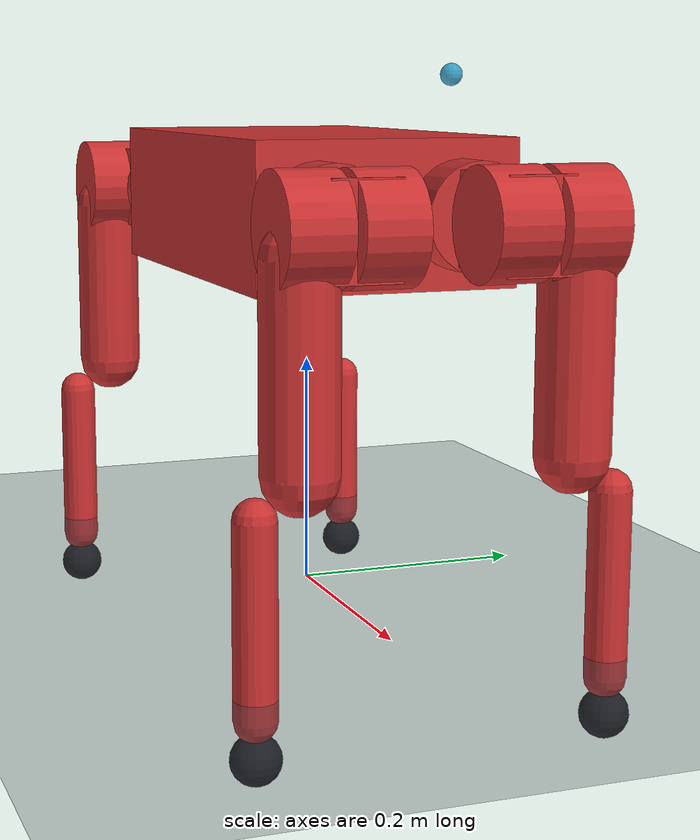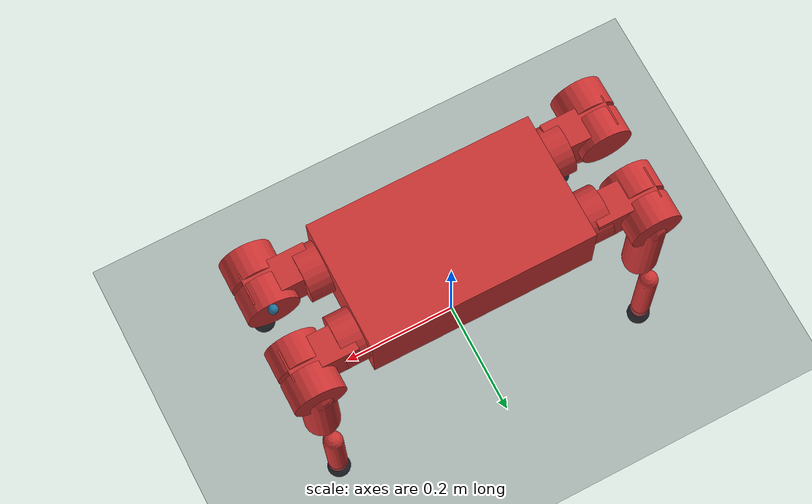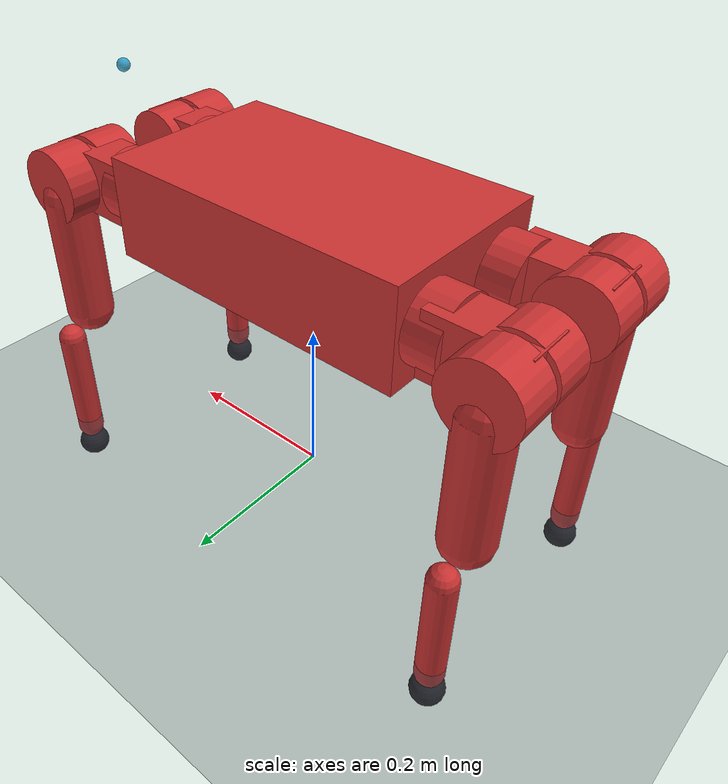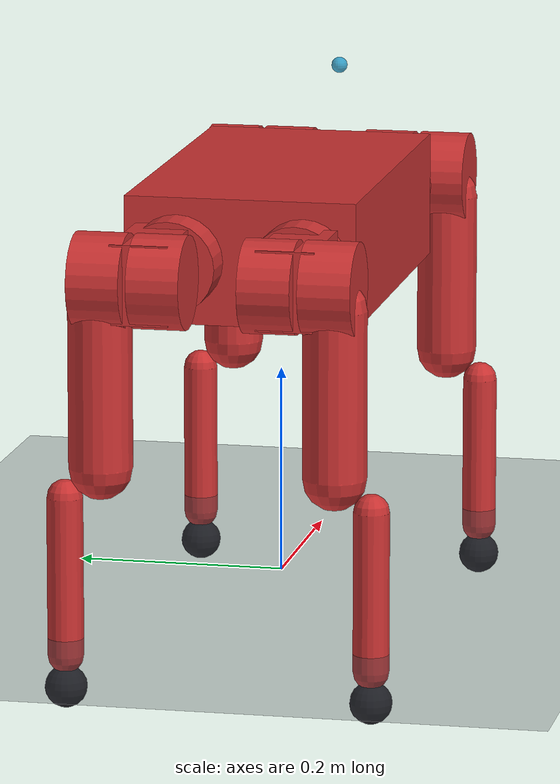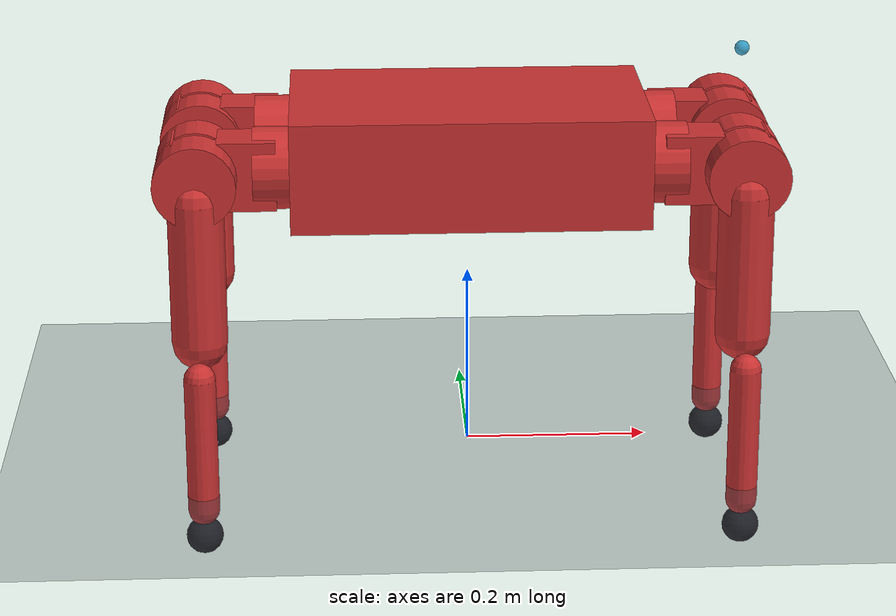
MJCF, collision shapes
<?xml version="1.0" ?>
<mujoco model="robodog_sizing">
  <compiler angle="radian" meshdir="/home/farouk/code/robodog/ros2_ws/install/robodog_description/share/robodog_description/meshes" autolimits="true" balanceinertia="true" discardvisual="false"/>
  <option timestep="0.0005" integrator="implicitfast" cone="elliptic" impratio="10" gravity="0 0 -9.81"/>
  <size njmax="2000" nconmax="500"/>
  <statistic extent="30.0"/>
  <visual>
    <global offwidth="1920" offheight="1200" azimuth="140" elevation="-20"/>
    <map znear="0.0016666666666666668" zfar="2.0"/>
    <quality shadowsize="2048" offsamples="4"/>
  </visual>
  <default>
    <default class="robot">
      <joint damping="0.05" frictionloss="0.12" armature="0.012"/>
      <motor ctrllimited="true" ctrlrange="-36 36"/>
      <default class="visual">
        <geom contype="0" conaffinity="0" group="2" density="0"/>
      </default>
      <default class="collision">
        <geom group="3" condim="4" friction="0.9 0.02 0.001" solref="0.004 1" solimp="0.95 0.99 0.001" density="0" rgba="0.8 0.2 0.2 0.35"/>
      </default>
      <default class="foot">
        <geom group="3" condim="6" friction="1.0 0.05 0.002" solref="0.006 1" solimp="0.95 0.99 0.001" density="0" priority="2" rgba="0.1 0.1 0.12 1"/>
      </default>
    </default>
  </default>
  <asset>
    <mesh name="4x9x4_bearing" file="4x9x4_bearing.stl"/>
    <mesh name="61804_2rs" file="61804_2rs.stl"/>
    <mesh name="acs758_200a_sensor" file="acs758_200a_sensor.stl"/>
    <mesh name="albright_sw80_48v" file="albright_sw80_48v.stl"/>
    <mesh name="angle_motor_connect" file="angle_motor_connect.stl"/>
    <mesh name="as150u_socket" file="as150u_socket.stl"/>
    <mesh name="battery_6s_10000mah_1" file="battery_6s_10000mah_1.stl"/>
    <mesh name="battery_6s_10000mah_2" file="battery_6s_10000mah_2.stl"/>
    <mesh name="belt" file="belt.stl"/>
    <mesh name="bmi088_imu" file="bmi088_imu.stl"/>
    <mesh name="body" file="body.stl"/>
    <mesh name="body_front" file="body_front.stl"/>
    <mesh name="body_panel" file="body_panel.stl"/>
    <mesh name="body_rear" file="body_rear.stl"/>
    <mesh name="e_stop_mushroom_nc" file="e_stop_mushroom_nc.stl"/>
    <mesh name="electronics_deck_front" file="electronics_deck_front.stl"/>
    <mesh name="electronics_deck_rear" file="electronics_deck_rear.stl"/>
    <mesh name="foot_ball" file="foot_ball.stl"/>
    <mesh name="handle" file="handle.stl"/>
    <mesh name="head" file="head.stl"/>
    <mesh name="head_cover" file="head_cover.stl"/>
    <mesh name="idler_bolt_m4x30" file="idler_bolt_m4x30.stl"/>
    <mesh name="idler_roller" file="idler_roller.stl"/>
    <mesh name="imu_sassa_support" file="imu_sassa_support.stl"/>
    <mesh name="inline_connect" file="inline_connect.stl"/>
    <mesh name="jetson_orin_nano_super_8gb" file="jetson_orin_nano_super_8gb.stl"/>
    <mesh name="knee_output_hub" file="knee_output_hub.stl"/>
    <mesh name="knee_rear_plate" file="knee_rear_plate.stl"/>
    <mesh name="littelfuse_mega_100a_holder" file="littelfuse_mega_100a_holder.stl"/>
    <mesh name="lower_leg" file="lower_leg.stl"/>
    <mesh name="lower_leg_cover" file="lower_leg_cover.stl"/>
    <mesh name="meanwell_rsd_60l_12" file="meanwell_rsd_60l_12.stl"/>
    <mesh name="motor_pulley" file="motor_pulley.stl"/>
    <mesh name="nuwa_hp60c" file="nuwa_hp60c.stl"/>
    <mesh name="robstride06" file="robstride06.stl"/>
    <mesh name="upperleg_cover" file="upperleg_cover.stl"/>
    <mesh name="upperleg_main" file="upperleg_main.stl"/>
    <texture name="sky" type="skybox" builtin="gradient" rgb1="0.35 0.45 0.60" rgb2="0.08 0.10 0.14" width="256" height="256"/>
    <texture name="grid" type="2d" builtin="checker" width="512" height="512" rgb1="0.28 0.30 0.33" rgb2="0.22 0.24 0.27"/>
    <material name="grid" texture="grid" texrepeat="12 12" texuniform="true" reflectance="0.05"/>
    <material name="shell" rgba="0.26 0.28 0.32 1"/>
    <material name="actuator" rgba="0.88 0.42 0.09 1"/>
    <material name="structure" rgba="0.72 0.74 0.78 1"/>
    <material name="foot" rgba="0.10 0.10 0.12 1"/>
    <material name="bearing" rgba="0.62 0.81 0.93 1"/>
    <material name="sensor" rgba="0.13 0.55 0.75 1"/>
  </asset>
  <worldbody>
    <body name="base_link" childclass="robot" pos="0 0 0.34" quat="1 0 0 0">
      <freejoint name="base_free"/>
      <inertial pos="-0.003046 0.000737 -0.002643" mass="18.236627" fullinertia="0.043565 0.17877 0.201722 0.000968 -0.000506 -0.000444"/>
      <geom type="mesh" mesh="acs758_200a_sensor" class="visual" pos="0 0 0" quat="0.707105 0 0 -0.707108" material="structure"/>
      <geom type="mesh" mesh="albright_sw80_48v" class="visual" pos="0 0 0" quat="0.707105 0 0 -0.707108" material="structure"/>
      <geom type="mesh" mesh="as150u_socket" class="visual" pos="0 0 0" quat="0.707105 0 0 -0.707108" material="structure"/>
      <geom type="mesh" mesh="battery_6s_10000mah_1" class="visual" pos="0 0 0" quat="0.707105 0 0 -0.707108" material="structure"/>
      <geom type="mesh" mesh="battery_6s_10000mah_2" class="visual" pos="0 0 0" quat="0.707105 0 0 -0.707108" material="structure"/>
      <geom type="mesh" mesh="bmi088_imu" class="visual" pos="0 0 0" quat="0.707105 0 0 -0.707108" material="structure"/>
      <geom type="mesh" mesh="body" class="visual" pos="0 0 0" quat="0.707105 0 0 -0.707108" material="shell"/>
      <geom type="mesh" mesh="body_front" class="visual" pos="0 0 0" quat="0.707105 0 0 -0.707108" material="structure"/>
      <geom type="mesh" mesh="body_panel" class="visual" pos="0.198 -1e-06 0" quat="0.499998 0.5 -0.500002 -0.5" material="shell"/>
      <geom type="mesh" mesh="body_panel" class="visual" pos="-0.198 1e-06 0" quat="0.499998 -0.5 0.500002 -0.5" material="shell"/>
      <geom type="mesh" mesh="body_rear" class="visual" pos="0 0 0" quat="0.707105 0 0 -0.707108" material="structure"/>
      <geom type="mesh" mesh="e_stop_mushroom_nc" class="visual" pos="0 0 0" quat="0.707105 0 0 -0.707108" material="structure"/>
      <geom type="mesh" mesh="electronics_deck_front" class="visual" pos="0 0 0" quat="0.707105 0 0 -0.707108" material="structure"/>
      <geom type="mesh" mesh="electronics_deck_rear" class="visual" pos="0 0 0" quat="0.707105 0 0 -0.707108" material="structure"/>
      <geom type="mesh" mesh="handle" class="visual" pos="-0 0 0" quat="0.707105 0 0 -0.707108" material="shell"/>
      <geom type="mesh" mesh="head" class="visual" pos="0 0 0" quat="0.707105 0 0 -0.707108" material="structure"/>
      <geom type="mesh" mesh="head_cover" class="visual" pos="0 0 0" quat="0.707105 0 0 -0.707108" material="structure"/>
      <geom type="mesh" mesh="imu_sassa_support" class="visual" pos="0 0 0" quat="0.707105 0 0 -0.707108" material="structure"/>
      <geom type="mesh" mesh="jetson_orin_nano_super_8gb" class="visual" pos="0 0 0" quat="0.707105 0 0 -0.707108" material="structure"/>
      <geom type="mesh" mesh="littelfuse_mega_100a_holder" class="visual" pos="0 0 0" quat="0.707105 0 0 -0.707108" material="structure"/>
      <geom type="mesh" mesh="meanwell_rsd_60l_12" class="visual" pos="0 0 0" quat="0.707105 0 0 -0.707108" material="structure"/>
      <geom type="mesh" mesh="nuwa_hp60c" class="visual" pos="0 0 0" quat="0.707105 0 0 -0.707108" material="structure"/>
      <geom type="mesh" mesh="robstride06" class="visual" pos="0.227 -0.060001 0" quat="2.70595e-06 -0.707105 0.707108 -2.70596e-06" material="structure"/>
      <geom type="mesh" mesh="robstride06" class="visual" pos="-0.227 -0.06 0" quat="0.707105 0 0 -0.707108" material="structure"/>
      <geom type="mesh" mesh="robstride06" class="visual" pos="-0.227 0.060001 0" quat="0.707105 0 0 -0.707108" material="structure"/>
      <geom type="mesh" mesh="robstride06" class="visual" pos="0.227 0.059999 0" quat="2.70595e-06 -0.707105 0.707108 -2.70596e-06" material="structure"/>
      <geom name="base_col0" type="box" class="collision" size="0.192 0.11 0.06" pos="0 0 0" quat="1 0 0 0"/>
      <geom name="base_col1" type="cylinder" class="collision" size="0.044 0.0245" pos="-0.2065 -0.06 0" quat="0.499999 0.499999 -0.500001 -0.500001"/>
      <geom name="base_col2" type="cylinder" class="collision" size="0.044 0.0245" pos="-0.2065 0.060001 0" quat="0.499999 0.499999 -0.500001 -0.500001"/>
      <geom name="base_col3" type="cylinder" class="collision" size="0.044 0.0245" pos="0.2065 0.059999 0" quat="0.500001 -0.499997 0.499999 -0.500003"/>
      <geom name="base_col4" type="cylinder" class="collision" size="0.044 0.0245" pos="0.2065 -0.060001 0" quat="0.500001 -0.499997 0.499999 -0.500003"/>
      <site name="imu_site" pos="0 0 0" size="0.01" rgba="0.1 0.6 0.8 0.6"/>
      <body name="camera_link" pos="0.297 0.002036 0.108013" quat="1 0 0 0">
        <inertial pos="-0.01528 0 0" mass="0.15" diaginertia="0.0001 2e-05 0.00011"/>
        <site name="camera_site" pos="0 0 0" size="0.008" rgba="0.1 0.6 0.8 0.8"/>
        <camera name="depth_camera" mode="fixed" pos="0 0 0" quat="0.5 0.5 -0.5 -0.5" fovy="49"/>
      </body>
      <body name="FL_hip" pos="0.231 0.06 0">
        <joint name="FL_haa_joint" type="hinge" axis="1 0 0" range="-0.8 0.8" armature="0.012" damping="0.05" frictionloss="0.12"/>
        <inertial pos="0.049351 -0.010325 2.7e-05" mass="0.908648" fullinertia="0.000844 0.00132 0.001049 2.1e-05 2e-06 0"/>
        <geom type="mesh" mesh="angle_motor_connect" class="visual" pos="0.06 -0.017001 1e-06" quat="0.500004 0.499992 -0.499998 0.500006" material="structure"/>
        <geom type="mesh" mesh="robstride06" class="visual" pos="0.06 0.011999 0" quat="2.55155e-06 0.104523 1.15343e-05 0.994522" material="structure"/>
        <geom name="FL_hip_col0" type="box" class="collision" size="0.055 0.0275 0.0375" pos="0.03 0.008 0" quat="1 0 0 0"/>
        <geom name="FL_hip_col1" type="cylinder" class="collision" size="0.044 0.0245" pos="0.06 -0.008501 1e-06" quat="-0.0739073 0.0739109 0.703242 0.703225"/>
        <body name="FL_thigh" pos="0.06 0.016 0">
          <joint name="FL_hfe_joint" type="hinge" axis="0 1 0" range="-1.4 2.4" armature="0.012" damping="0.05" frictionloss="0.12"/>
          <inertial pos="2.7e-05 0.048393 -0.0284" mass="1.29223" fullinertia="0.004974 0.004899 0.0015 -1e-06 2e-06 0.000736"/>
          <geom type="mesh" mesh="4x9x4_bearing" class="visual" pos="0 0.053499 -1e-06" quat="-0.499997 0.500003 -0.500007 -0.499994" material="structure"/>
          <geom type="mesh" mesh="61804_2rs" class="visual" pos="0 0.079249 -1e-06" quat="1.18268e-05 1 -1.49999e-06 -5.00018e-07" material="bearing"/>
          <geom type="mesh" mesh="belt" class="visual" pos="0 0.053499 -1e-06" quat="-0.499997 0.500003 -0.500007 -0.499994" material="structure"/>
          <geom type="mesh" mesh="idler_bolt_m4x30" class="visual" pos="0 0.053499 -1e-06" quat="-0.499997 0.500003 -0.500007 -0.499994" material="structure"/>
          <geom type="mesh" mesh="idler_roller" class="visual" pos="0 0.053499 -1e-06" quat="-0.499997 0.500003 -0.500007 -0.499994" material="structure"/>
          <geom type="mesh" mesh="inline_connect" class="visual" pos="0 0.022999 -0" quat="6.92862e-06 0.707105 -9.29489e-06 -0.707108" material="structure"/>
          <geom type="mesh" mesh="knee_output_hub" class="visual" pos="0 0.055999 -1e-06" quat="0.7071 -0.707114 1.41422e-06 -7.07093e-07" material="structure"/>
          <geom type="mesh" mesh="knee_rear_plate" class="visual" pos="0 0.022999 -0" quat="6.92862e-06 0.707105 -9.29489e-06 -0.707108" material="structure"/>
          <geom type="mesh" mesh="motor_pulley" class="visual" pos="0 0.055999 -1e-06" quat="0.7071 -0.707114 1.41422e-06 -7.07093e-07" material="structure"/>
          <geom type="mesh" mesh="robstride06" class="visual" pos="0 0.051999 -1e-06" quat="1.18268e-05 1 -1.49999e-06 -5.00018e-07" material="structure"/>
          <geom type="mesh" mesh="upperleg_cover" class="visual" pos="0 0.053499 -1e-06" quat="-0.499997 0.500003 -0.500007 -0.499994" material="structure"/>
          <geom type="mesh" mesh="upperleg_main" class="visual" pos="0 0.053499 -1e-06" quat="-0.499997 0.500003 -0.500007 -0.499994" material="structure"/>
          <geom name="FL_thigh_col0" type="capsule" class="collision" size="0.03" fromto="0 0.034 -0.02 0 0.034 -0.177"/>
          <geom name="FL_thigh_col1" type="cylinder" class="collision" size="0.044 0.0245" pos="0 0.031499 -0" quat="0.707098 -0.707115 1.41422e-06 -7.0709e-07"/>
          <body name="FL_calf" pos="0 0.068501 -0.192">
            <joint name="FL_kfe_joint" type="hinge" axis="0 1 0" range="-2.6 0" armature="0.048" damping="0.2" frictionloss="0.24"/>
            <inertial pos="0 3.3e-05 -0.08012" mass="0.202465" fullinertia="0.00114 0.001145 3.2e-05 -0 -8e-06 0"/>
            <geom type="mesh" mesh="61804_2rs" class="visual" pos="0 -0.009006 -1e-06" quat="3.88215e-06 0.707107 -9.78396e-06 -0.707107" material="bearing"/>
            <geom type="mesh" mesh="61804_2rs" class="visual" pos="0 0.008994 -1e-06" quat="0.707107 -6.4795e-06 0.707107 -7.18661e-06" material="bearing"/>
            <geom type="mesh" mesh="foot_ball" class="visual" pos="0 -6e-06 -1e-06" quat="0.500004 0.499996 0.499994 -0.500006" material="foot"/>
            <geom type="mesh" mesh="lower_leg" class="visual" pos="0 -6e-06 -1e-06" quat="0.500004 0.499996 0.499994 -0.500006" material="structure"/>
            <geom type="mesh" mesh="lower_leg_cover" class="visual" pos="0 -6e-06 -1e-06" quat="0.500004 0.499996 0.499994 -0.500006" material="structure"/>
            <geom name="FL_calf_col0" type="capsule" class="collision" size="0.017" fromto="0 0 -0.015 0 0 -0.165621"/>
            <geom name="FL_calf_col1" type="sphere" class="foot" size="0.02" pos="0 0 -0.195621"/>
            <site name="FL_foot_site" pos="0 0 -0.195621" size="0.0204" type="sphere" rgba="0 0 0 0"/>
          </body>
        </body>
      </body>
      <body name="FR_hip" pos="0.231 -0.06 0">
        <joint name="FR_haa_joint" type="hinge" axis="1 0 0" range="-0.8 0.8" armature="0.012" damping="0.05" frictionloss="0.12"/>
        <inertial pos="0.049351 0.010323 -2.5e-05" mass="0.908648" fullinertia="0.000844 0.00132 0.001049 -2.1e-05 -2e-06 0"/>
        <geom type="mesh" mesh="angle_motor_connect" class="visual" pos="0.06 0.016999 1e-06" quat="0.500012 -0.499992 0.499991 0.500006" material="structure"/>
        <geom type="mesh" mesh="robstride06" class="visual" pos="0.06 -0.012001 0" quat="0.104531 3.64323e-06 0.994522 1.51833e-05" material="structure"/>
        <geom name="FR_hip_col0" type="box" class="collision" size="0.055 0.0275 0.0375" pos="0.03 -0.008 0" quat="1 0 0 0"/>
        <geom name="FR_hip_col1" type="cylinder" class="collision" size="0.044 0.0245" pos="0.06 0.008499 1e-06" quat="-0.0739118 -0.0739169 -0.703244 0.703222"/>
        <body name="FR_thigh" pos="0.06 -0.016 0">
          <joint name="FR_hfe_joint" type="hinge" axis="0 1 0" range="-1.4 2.4" armature="0.012" damping="0.05" frictionloss="0.12"/>
          <inertial pos="-2.7e-05 -0.048395 -0.028401" mass="1.29223" fullinertia="0.004974 0.004899 0.0015 -1e-06 -2e-06 -0.000736"/>
          <geom type="mesh" mesh="4x9x4_bearing" class="visual" pos="-0 -0.053501 -1e-06" quat="0.499992 0.500009 0.500005 -0.499995" material="structure"/>
          <geom type="mesh" mesh="61804_2rs" class="visual" pos="-0 -0.079251 -2e-06" quat="5.00037e-07 2.32679e-06 1 1.58268e-05" material="bearing"/>
          <geom type="mesh" mesh="belt" class="visual" pos="-0 -0.053501 -1e-06" quat="0.499992 0.500009 0.500005 -0.499995" material="structure"/>
          <geom type="mesh" mesh="idler_bolt_m4x30" class="visual" pos="-0 -0.053501 -1e-06" quat="0.499992 0.500009 0.500005 -0.499995" material="structure"/>
          <geom type="mesh" mesh="idler_roller" class="visual" pos="-0 -0.053501 -1e-06" quat="0.499992 0.500009 0.500005 -0.499995" material="structure"/>
          <geom type="mesh" mesh="inline_connect" class="visual" pos="-0 -0.023001 -0" quat="0.707108 1.23636e-05 0.707105 9.53512e-06" material="structure"/>
          <geom type="mesh" mesh="knee_output_hub" class="visual" pos="-0 -0.056001 -1e-06" quat="1.29171e-06 -1.99886e-06 -0.707117 0.707097" material="structure"/>
          <geom type="mesh" mesh="knee_rear_plate" class="visual" pos="-0 -0.023001 -0" quat="0.707108 1.23636e-05 0.707105 9.53512e-06" material="structure"/>
          <geom type="mesh" mesh="motor_pulley" class="visual" pos="-0 -0.056001 -1e-06" quat="1.29171e-06 -1.99886e-06 -0.707117 0.707097" material="structure"/>
          <geom type="mesh" mesh="robstride06" class="visual" pos="-0 -0.052001 -1e-06" quat="5.00037e-07 2.32679e-06 1 1.58268e-05" material="structure"/>
          <geom type="mesh" mesh="upperleg_cover" class="visual" pos="-0 -0.053501 -1e-06" quat="0.499992 0.500009 0.500005 -0.499995" material="structure"/>
          <geom type="mesh" mesh="upperleg_main" class="visual" pos="-0 -0.053501 -1e-06" quat="0.499992 0.500009 0.500005 -0.499995" material="structure"/>
          <geom name="FR_thigh_col0" type="capsule" class="collision" size="0.03" fromto="0 -0.034 -0.02 0 -0.034 -0.177"/>
          <geom name="FR_thigh_col1" type="cylinder" class="collision" size="0.044 0.0245" pos="-0 -0.031501 -1e-06" quat="1.29171e-06 -1.99887e-06 -0.707118 0.707096"/>
          <body name="FR_calf" pos="0 -0.068501 -0.192">
            <joint name="FR_kfe_joint" type="hinge" axis="0 1 0" range="-2.6 0" armature="0.048" damping="0.2" frictionloss="0.24"/>
            <inertial pos="-0 -3.3e-05 -0.080121" mass="0.202465" fullinertia="0.00114 0.001145 3.2e-05 0 -0 -0"/>
            <geom type="mesh" mesh="61804_2rs" class="visual" pos="-0 0.009005 -2e-06" quat="0.707107 1.49648e-05 0.707107 4.35818e-06" material="bearing"/>
            <geom type="mesh" mesh="61804_2rs" class="visual" pos="-0 -0.008995 -2e-06" quat="1.23674e-05 -0.707107 -6.95553e-06 0.707107" material="bearing"/>
            <geom type="mesh" mesh="foot_ball" class="visual" pos="-0 5e-06 -2e-06" quat="0.50001 -0.49999 0.499996 0.500004" material="foot"/>
            <geom type="mesh" mesh="lower_leg" class="visual" pos="-0 5e-06 -2e-06" quat="0.50001 -0.49999 0.499996 0.500004" material="structure"/>
            <geom type="mesh" mesh="lower_leg_cover" class="visual" pos="-0 5e-06 -2e-06" quat="0.50001 -0.49999 0.499996 0.500004" material="structure"/>
            <geom name="FR_calf_col0" type="capsule" class="collision" size="0.017" fromto="0 0 -0.015 0 0 -0.165621"/>
            <geom name="FR_calf_col1" type="sphere" class="foot" size="0.02" pos="0 0 -0.195621"/>
            <site name="FR_foot_site" pos="0 0 -0.195621" size="0.0204" type="sphere" rgba="0 0 0 0"/>
          </body>
        </body>
      </body>
      <body name="RL_hip" pos="-0.231 0.06 0">
        <joint name="RL_haa_joint" type="hinge" axis="1 0 0" range="-0.8 0.8" armature="0.012" damping="0.05" frictionloss="0.12"/>
        <inertial pos="-0.049351 -0.010323 -2.6e-05" mass="0.908648" fullinertia="0.000844 0.00132 0.001049 -2.1e-05 2e-06 -0"/>
        <geom type="mesh" mesh="angle_motor_connect" class="visual" pos="-0.06 -0.016999 0" quat="0.500001 0.499999 0.499997 -0.500003" material="structure"/>
        <geom type="mesh" mesh="robstride06" class="visual" pos="-0.06 0.012001 0" quat="1.55547e-06 0.994522 -2.29536e-06 -0.104527" material="structure"/>
        <geom name="RL_hip_col0" type="box" class="collision" size="0.055 0.0275 0.0375" pos="-0.03 0.008 0" quat="1 0 0 0"/>
        <geom name="RL_hip_col1" type="cylinder" class="collision" size="0.044 0.0245" pos="-0.06 -0.008499 0" quat="0.703232 -0.703234 0.0739132 0.0739099"/>
        <body name="RL_thigh" pos="-0.06 0.016 0">
          <joint name="RL_hfe_joint" type="hinge" axis="0 1 0" range="-1.4 2.4" armature="0.012" damping="0.05" frictionloss="0.12"/>
          <inertial pos="2.7e-05 0.048396 -0.0284" mass="1.29223" fullinertia="0.004974 0.004899 0.0015 -1e-06 2e-06 0.000736"/>
          <geom type="mesh" mesh="4x9x4_bearing" class="visual" pos="0 0.053501 -0" quat="-0.500002 0.499997 -0.500003 -0.499998" material="structure"/>
          <geom type="mesh" mesh="61804_2rs" class="visual" pos="1e-06 0.079251 -0" quat="1.82679e-06 1 -2e-06 -5.00004e-07" material="bearing"/>
          <geom type="mesh" mesh="belt" class="visual" pos="0 0.053501 -0" quat="-0.500002 0.499997 -0.500003 -0.499998" material="structure"/>
          <geom type="mesh" mesh="idler_bolt_m4x30" class="visual" pos="0 0.053501 -0" quat="-0.500002 0.499997 -0.500003 -0.499998" material="structure"/>
          <geom type="mesh" mesh="idler_roller" class="visual" pos="0 0.053501 -0" quat="-0.500002 0.499997 -0.500003 -0.499998" material="structure"/>
          <geom type="mesh" mesh="inline_connect" class="visual" pos="0 0.023001 -0" quat="-1.40629e-07 0.707105 -2.93275e-06 -0.707109" material="structure"/>
          <geom type="mesh" mesh="knee_output_hub" class="visual" pos="0 0.056001 -0" quat="0.707107 -0.707107 1.76777e-06 -1.06066e-06" material="structure"/>
          <geom type="mesh" mesh="knee_rear_plate" class="visual" pos="0 0.023001 -0" quat="-1.40629e-07 0.707105 -2.93275e-06 -0.707109" material="structure"/>
          <geom type="mesh" mesh="motor_pulley" class="visual" pos="0 0.056001 -0" quat="0.707107 -0.707107 1.76777e-06 -1.06066e-06" material="structure"/>
          <geom type="mesh" mesh="robstride06" class="visual" pos="0 0.052001 -0" quat="1.82679e-06 1 -2e-06 -5.00004e-07" material="structure"/>
          <geom type="mesh" mesh="upperleg_cover" class="visual" pos="0 0.053501 0" quat="-0.500002 0.499997 -0.500003 -0.499998" material="structure"/>
          <geom type="mesh" mesh="upperleg_main" class="visual" pos="0 0.053501 -0" quat="-0.500002 0.499997 -0.500003 -0.499998" material="structure"/>
          <geom name="RL_thigh_col0" type="capsule" class="collision" size="0.03" fromto="0 0.034 -0.02 0 0.034 -0.177"/>
          <geom name="RL_thigh_col1" type="cylinder" class="collision" size="0.044 0.0245" pos="0 0.031501 -0" quat="0.707105 -0.707108 1.76777e-06 -1.06066e-06"/>
          <body name="RL_calf" pos="0 0.068501 -0.192">
            <joint name="RL_kfe_joint" type="hinge" axis="0 1 0" range="-2.6 0" armature="0.048" damping="0.2" frictionloss="0.24"/>
            <inertial pos="0 4e-05 -0.080119" mass="0.202465" fullinertia="0.00114 0.001145 3.2e-05 -0 -7e-06 0"/>
            <geom type="mesh" mesh="61804_2rs" class="visual" pos="0 -0.009 -0" quat="3.05951e-06 -0.707107 3.05951e-06 0.707107" material="bearing"/>
            <geom type="mesh" mesh="61804_2rs" class="visual" pos="0 0.009 -0" quat="0.707107 7.07107e-07 0.707107 -7.07107e-07" material="bearing"/>
            <geom type="mesh" mesh="foot_ball" class="visual" pos="0 0 -0" quat="0.499999 0.500001 0.499998 -0.500001" material="foot"/>
            <geom type="mesh" mesh="lower_leg" class="visual" pos="0 0 -0" quat="0.499999 0.500001 0.499998 -0.500001" material="structure"/>
            <geom type="mesh" mesh="lower_leg_cover" class="visual" pos="0 0 -0" quat="0.499999 0.500001 0.499998 -0.500001" material="structure"/>
            <geom name="RL_calf_col0" type="capsule" class="collision" size="0.017" fromto="0 0 -0.015 0 0 -0.165621"/>
            <geom name="RL_calf_col1" type="sphere" class="foot" size="0.02" pos="0 0 -0.195621"/>
            <site name="RL_foot_site" pos="0 0 -0.195621" size="0.0204" type="sphere" rgba="0 0 0 0"/>
          </body>
        </body>
      </body>
      <body name="RR_hip" pos="-0.231 -0.06 0">
        <joint name="RR_haa_joint" type="hinge" axis="1 0 0" range="-0.8 0.8" armature="0.012" damping="0.05" frictionloss="0.12"/>
        <inertial pos="-0.049351 0.010325 2.6e-05" mass="0.908648" fullinertia="0.000844 0.00132 0.001049 2.1e-05 -2e-06 -0"/>
        <geom type="mesh" mesh="angle_motor_connect" class="visual" pos="-0.06 0.017001 -0" quat="-0.499997 0.500003 0.500001 0.499999" material="structure"/>
        <geom type="mesh" mesh="robstride06" class="visual" pos="-0.06 -0.011999 0" quat="0.994522 -2.09357e-06 -0.104527 -1.20358e-06" material="structure"/>
        <geom name="RR_hip_col0" type="box" class="collision" size="0.055 0.0275 0.0375" pos="-0.03 -0.008 0" quat="1 0 0 0"/>
        <geom name="RR_hip_col1" type="cylinder" class="collision" size="0.044 0.0245" pos="-0.06 0.008501 -0" quat="0.703235 0.703232 -0.0739124 0.0739107"/>
        <body name="RR_thigh" pos="-0.06 -0.016 0">
          <joint name="RR_hfe_joint" type="hinge" axis="0 1 0" range="-1.4 2.4" armature="0.012" damping="0.05" frictionloss="0.12"/>
          <inertial pos="-2.7e-05 -0.048394 -0.028399" mass="1.29223" fullinertia="0.004974 0.004899 0.0015 -1e-06 -2e-06 -0.000736"/>
          <geom type="mesh" mesh="4x9x4_bearing" class="visual" pos="-0 -0.053499 0" quat="0.500001 0.5 0.499996 -0.500004" material="structure"/>
          <geom type="mesh" mesh="61804_2rs" class="visual" pos="-0 -0.079249 0" quat="-4.99997e-07 -1.3268e-06 -1 2.3268e-06" material="bearing"/>
          <geom type="mesh" mesh="belt" class="visual" pos="-0 -0.053499 0" quat="0.500001 0.5 0.499996 -0.500004" material="structure"/>
          <geom type="mesh" mesh="idler_bolt_m4x30" class="visual" pos="-0 -0.053499 0" quat="0.500001 0.5 0.499996 -0.500004" material="structure"/>
          <geom type="mesh" mesh="idler_roller" class="visual" pos="-0 -0.053499 0" quat="0.500001 0.5 0.499996 -0.500004" material="structure"/>
          <geom type="mesh" mesh="inline_connect" class="visual" pos="-0 -0.022999 0" quat="0.707108 -5.41898e-07 0.707105 -2.66322e-06" material="structure"/>
          <geom type="mesh" mesh="knee_output_hub" class="visual" pos="-0 -0.055999 0" quat="5.84638e-07 -1.29174e-06 -0.707104 0.70711" material="structure"/>
          <geom type="mesh" mesh="knee_rear_plate" class="visual" pos="-0 -0.022999 0" quat="0.707108 -5.41898e-07 0.707105 -2.66322e-06" material="structure"/>
          <geom type="mesh" mesh="motor_pulley" class="visual" pos="-0 -0.055999 0" quat="5.84638e-07 -1.29174e-06 -0.707104 0.70711" material="structure"/>
          <geom type="mesh" mesh="robstride06" class="visual" pos="-0 -0.051999 0" quat="-4.99997e-07 -1.3268e-06 -1 2.3268e-06" material="structure"/>
          <geom type="mesh" mesh="upperleg_cover" class="visual" pos="-0 -0.053499 1e-06" quat="0.500001 0.5 0.499996 -0.500004" material="structure"/>
          <geom type="mesh" mesh="upperleg_main" class="visual" pos="-0 -0.053499 0" quat="0.500001 0.5 0.499996 -0.500004" material="structure"/>
          <geom name="RR_thigh_col0" type="capsule" class="collision" size="0.03" fromto="0 -0.034 -0.02 0 -0.034 -0.177"/>
          <geom name="RR_thigh_col1" type="cylinder" class="collision" size="0.044 0.0245" pos="-0 -0.031499 0" quat="5.84635e-07 -1.29174e-06 -0.707105 0.707108"/>
          <body name="RR_calf" pos="0 -0.068501 -0.192">
            <joint name="RR_kfe_joint" type="hinge" axis="0 1 0" range="-2.6 0" armature="0.048" damping="0.2" frictionloss="0.24"/>
            <inertial pos="-0 -4.1e-05 -0.080119" mass="0.202465" fullinertia="0.00114 0.001145 3.2e-05 0 -9e-06 -0"/>
            <geom type="mesh" mesh="61804_2rs" class="visual" pos="-0 0.009 0" quat="0.707107 2.00578e-06 0.707107 -7.18661e-06" material="bearing"/>
            <geom type="mesh" mesh="61804_2rs" class="visual" pos="-0 -0.009 0" quat="7.00172e-07 0.707107 -4.48065e-06 -0.707107" material="bearing"/>
            <geom type="mesh" mesh="foot_ball" class="visual" pos="-0 0 0" quat="0.500001 -0.5 0.500004 0.499996" material="foot"/>
            <geom type="mesh" mesh="lower_leg" class="visual" pos="-0 0 0" quat="0.500001 -0.5 0.500004 0.499996" material="structure"/>
            <geom type="mesh" mesh="lower_leg_cover" class="visual" pos="-0 0 0" quat="0.500001 -0.5 0.500004 0.499996" material="structure"/>
            <geom name="RR_calf_col0" type="capsule" class="collision" size="0.017" fromto="0 0 -0.015 0 0 -0.165621"/>
            <geom name="RR_calf_col1" type="sphere" class="foot" size="0.02" pos="0 0 -0.195621"/>
            <site name="RR_foot_site" pos="0 0 -0.195621" size="0.0204" type="sphere" rgba="0 0 0 0"/>
          </body>
        </body>
      </body>
    </body>
    <light name="sun" directional="true" diffuse="0.75 0.75 0.75" specular="0.1 0.1 0.1" pos="0 0 6" dir="0 0 -1" castshadow="true"/>
    <light name="fill" directional="true" diffuse="0.25 0.25 0.28" pos="-4 -4 5" dir="0.5 0.5 -1" castshadow="false"/>
    <geom name="ground" type="plane" material="grid" size="60 60 0.05" pos="0 0 0" condim="3" friction="0.9 0.02 0.001" group="0"/>
  </worldbody>
  <contact>
    <exclude name="FL_thigh_base" body1="base_link" body2="FL_thigh"/>
    <exclude name="FR_thigh_base" body1="base_link" body2="FR_thigh"/>
    <exclude name="RL_thigh_base" body1="base_link" body2="RL_thigh"/>
    <exclude name="RR_thigh_base" body1="base_link" body2="RR_thigh"/>
  </contact>
  <actuator>
    <motor name="FL_haa_joint" joint="FL_haa_joint" gear="1" class="robot" ctrlrange="-36 36"/>
    <motor name="FL_hfe_joint" joint="FL_hfe_joint" gear="1" class="robot" ctrlrange="-36 36"/>
    <motor name="FL_kfe_joint" joint="FL_kfe_joint" gear="1" class="robot" ctrlrange="-68.4 68.4"/>
    <motor name="FR_haa_joint" joint="FR_haa_joint" gear="1" class="robot" ctrlrange="-36 36"/>
    <motor name="FR_hfe_joint" joint="FR_hfe_joint" gear="1" class="robot" ctrlrange="-36 36"/>
    <motor name="FR_kfe_joint" joint="FR_kfe_joint" gear="1" class="robot" ctrlrange="-68.4 68.4"/>
    <motor name="RL_haa_joint" joint="RL_haa_joint" gear="1" class="robot" ctrlrange="-36 36"/>
    <motor name="RL_hfe_joint" joint="RL_hfe_joint" gear="1" class="robot" ctrlrange="-36 36"/>
    <motor name="RL_kfe_joint" joint="RL_kfe_joint" gear="1" class="robot" ctrlrange="-68.4 68.4"/>
    <motor name="RR_haa_joint" joint="RR_haa_joint" gear="1" class="robot" ctrlrange="-36 36"/>
    <motor name="RR_hfe_joint" joint="RR_hfe_joint" gear="1" class="robot" ctrlrange="-36 36"/>
    <motor name="RR_kfe_joint" joint="RR_kfe_joint" gear="1" class="robot" ctrlrange="-68.4 68.4"/>
  </actuator>
  <sensor>
    <accelerometer name="imu_accel" site="imu_site"/>
    <gyro name="imu_gyro" site="imu_site"/>
    <framequat name="imu_quat" objtype="site" objname="imu_site"/>
    <touch name="FL_touch" site="FL_foot_site"/>
    <touch name="FR_touch" site="FR_foot_site"/>
    <touch name="RL_touch" site="RL_foot_site"/>
    <touch name="RR_touch" site="RR_foot_site"/>
    <jointpos name="FL_haa_pos" joint="FL_haa_joint"/>
    <jointvel name="FL_haa_vel" joint="FL_haa_joint"/>
    <jointpos name="FL_hfe_pos" joint="FL_hfe_joint"/>
    <jointvel name="FL_hfe_vel" joint="FL_hfe_joint"/>
    <jointpos name="FL_kfe_pos" joint="FL_kfe_joint"/>
    <jointvel name="FL_kfe_vel" joint="FL_kfe_joint"/>
    <jointpos name="FR_haa_pos" joint="FR_haa_joint"/>
    <jointvel name="FR_haa_vel" joint="FR_haa_joint"/>
    <jointpos name="FR_hfe_pos" joint="FR_hfe_joint"/>
    <jointvel name="FR_hfe_vel" joint="FR_hfe_joint"/>
    <jointpos name="FR_kfe_pos" joint="FR_kfe_joint"/>
    <jointvel name="FR_kfe_vel" joint="FR_kfe_joint"/>
    <jointpos name="RL_haa_pos" joint="RL_haa_joint"/>
    <jointvel name="RL_haa_vel" joint="RL_haa_joint"/>
    <jointpos name="RL_hfe_pos" joint="RL_hfe_joint"/>
    <jointvel name="RL_hfe_vel" joint="RL_hfe_joint"/>
    <jointpos name="RL_kfe_pos" joint="RL_kfe_joint"/>
    <jointvel name="RL_kfe_vel" joint="RL_kfe_joint"/>
    <jointpos name="RR_haa_pos" joint="RR_haa_joint"/>
    <jointvel name="RR_haa_vel" joint="RR_haa_joint"/>
    <jointpos name="RR_hfe_pos" joint="RR_hfe_joint"/>
    <jointvel name="RR_hfe_vel" joint="RR_hfe_joint"/>
    <jointpos name="RR_kfe_pos" joint="RR_kfe_joint"/>
    <jointvel name="RR_kfe_vel" joint="RR_kfe_joint"/>
  </sensor>
  <keyframe>
    <key name="zero" qpos="0 0 0.409621 1 0 0 0 0 0 0 0 0 0 0 0 0 0 0 0"/>
    <key name="stand" qpos="0 0 0.322 1 0 0 0 0 0.693417 -1.37155 0 0.693417 -1.37155 0 0.693417 -1.37155 0 0.693417 -1.37155"/>
    <key name="crouch" qpos="0 0 0.242 1 0 0 0 0 0.980868 -1.93463 0 0.980868 -1.93463 0 0.980868 -1.93463 0 0.980868 -1.93463"/>
    <key name="rest" qpos="0 0 0.162 1 0 0 0 0 1.2255 -2.40276 0 1.2255 -2.40276 0 1.2255 -2.40276 0 1.2255 -2.40276"/>
  </keyframe>
</mujoco>
